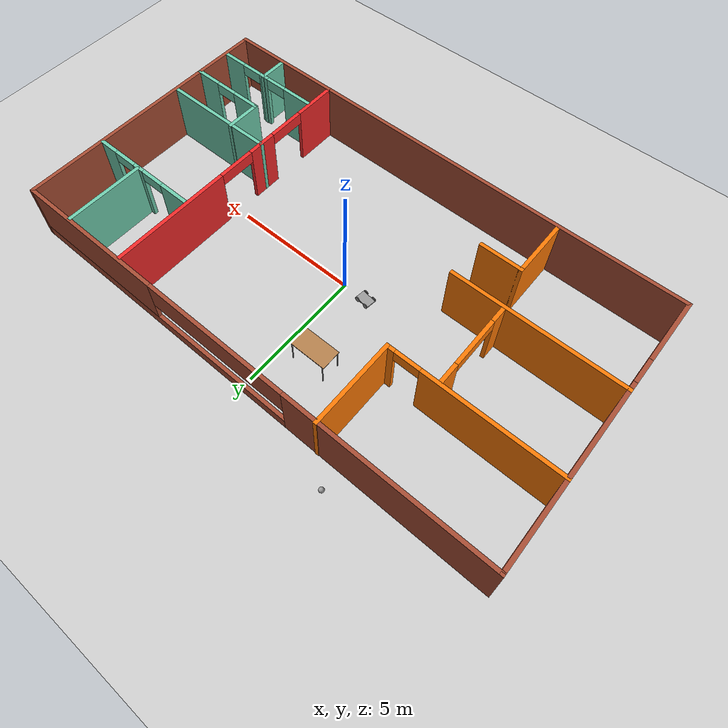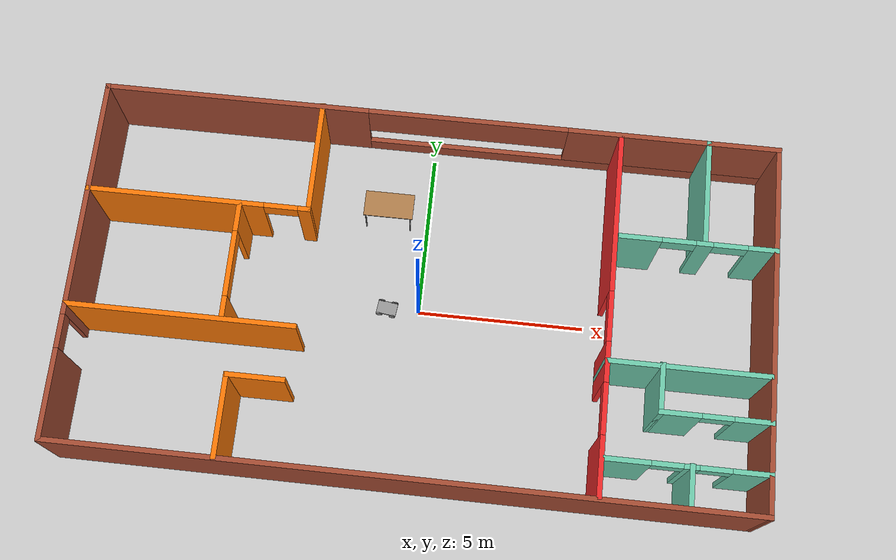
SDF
<sdf version="1.6">
 <world name="default">
  <model name="ground_plane">
   <static>1</static>
   <link name="link">
    <collision name="collision">
     <geometry><plane><normal>0 0 1</normal><size>100 100</size></plane></geometry>
     <surface>
      <contact><collide_bitmask>65535</collide_bitmask></contact>
      <friction><ode><mu>100</mu><mu2>50</mu2></ode></friction>
     </surface>
    </collision>
    <visual name="visual">
     <cast_shadows>0</cast_shadows>
     <geometry><plane><normal>0 0 1</normal><size>100 100</size></plane></geometry>
     <material>
      <script><uri>file://media/materials/scripts/gazebo.material</uri><name>Gazebo/Grey</name></script>
     </material>
    </visual>
   </link>
  </model>
  <model name="building">
   <pose>0.099988 -0.03805 0 0 -0 0</pose>
   <link name="Wall_37">
    <collision name="Wall_37_Collision">
     <geometry><box><size>20.35 0.15 2.5</size></box></geometry>
     <pose>0 0 1.25 0 -0 0</pose>
    </collision>
    <visual name="Wall_37_Visual">
     <pose>0 0 1.25 0 -0 0</pose>
     <geometry><box><size>20.35 0.15 2.5</size></box></geometry>
     <material>
      <script><uri>file://media/materials/scripts/gazebo.material</uri><name>Gazebo/Bricks</name></script>
      <ambient>1 1 1 1</ambient>
     </material>
     <meta><layer>0</layer></meta>
    </visual>
    <pose>1.2e-05 -5.43545 0 0 -0 -0.002228</pose>
   </link>
   <link name="Wall_38">
    <collision name="Wall_38_Collision">
     <geometry><box><size>11.046 0.15 2.5</size></box></geometry>
     <pose>0 0 1.25 0 -0 0</pose>
    </collision>
    <visual name="Wall_38_Visual">
     <pose>0 0 1.25 0 -0 0</pose>
     <geometry><box><size>11.046 0.15 2.5</size></box></geometry>
     <material>
      <script><uri>file://media/materials/scripts/gazebo.material</uri><name>Gazebo/Bricks</name></script>
      <ambient>1 1 1 1</ambient>
     </material>
     <meta><layer>0</layer></meta>
    </visual>
    <pose>10.1 -0.009946 0 0 -0 1.5708</pose>
   </link>
   <link name="Wall_40">
    <pose>-10.1 0.012554 0 0 -0 1.5708</pose>
    <visual name="Wall_40_Visual_0">
     <pose>-4.15449 0 1.25 0 -0 0</pose>
     <geometry><box><size>2.69103 0.15 2.5</size></box></geometry>
     <material>
      <script><uri>file://media/materials/scripts/gazebo.material</uri><name>Gazebo/Bricks</name></script>
      <ambient>1 1 1 1</ambient>
     </material>
     <meta><layer>0</layer></meta>
    </visual>
    <collision name="Wall_40_Collision_0">
     <geometry><box><size>2.69103 0.15 2.5</size></box></geometry>
     <pose>-4.15449 0 1.25 0 -0 0</pose>
    </collision>
    <visual name="Wall_40_Visual_1">
     <pose>1.84551 0 1.25 0 -0 0</pose>
     <geometry><box><size>7.30897 0.15 2.5</size></box></geometry>
     <material>
      <script><uri>file://media/materials/scripts/gazebo.material</uri><name>Gazebo/Bricks</name></script>
      <ambient>1 1 1 1</ambient>
     </material>
     <meta><layer>0</layer></meta>
    </visual>
    <collision name="Wall_40_Collision_1">
     <geometry><box><size>7.30897 0.15 2.5</size></box></geometry>
     <pose>1.84551 0 1.25 0 -0 0</pose>
    </collision>
    <visual name="Wall_40_Visual_2">
     <pose>-2.30897 0 2.25 0 -0 0</pose>
     <geometry><box><size>1 0.15 0.5</size></box></geometry>
     <material>
      <script><uri>file://media/materials/scripts/gazebo.material</uri><name>Gazebo/Bricks</name></script>
      <ambient>1 1 1 1</ambient>
     </material>
     <meta><layer>0</layer></meta>
    </visual>
    <collision name="Wall_40_Collision_2">
     <geometry><box><size>1 0.15 0.5</size></box></geometry>
     <pose>-2.30897 0 2.25 0 -0 0</pose>
    </collision>
   </link>
   <link name="Wall_42">
    <collision name="Wall_42_Collision">
     <geometry><box><size>6.75 0.15 2.5</size></box></geometry>
     <pose>0 0 1.25 0 -0 0</pose>
    </collision>
    <visual name="Wall_42_Visual">
     <pose>0 0 1.25 0 -0 0</pose>
     <geometry><box><size>6.75 0.15 2.5</size></box></geometry>
     <material>
      <script><uri>file://media/materials/scripts/gazebo.material</uri><name>Gazebo/Grey</name></script>
      <ambient>0.996078 0.47451 0.0196078 1</ambient>
     </material>
     <meta><layer>0</layer></meta>
    </visual>
    <pose>-6.79999 -1.45995 0 0 -0 0</pose>
   </link>
   <link name="Wall_44">
    <pose>-6.83449 2.10805 0 0 -0 0</pose>
    <visual name="Wall_44_Visual_0">
     <pose>-0.692963 0 1.25 0 -0 0</pose>
     <geometry><box><size>5.29546 0.15 2.5</size></box></geometry>
     <material>
      <script><uri>file://media/materials/scripts/gazebo.material</uri><name>Gazebo/Grey</name></script>
      <ambient>0.996078 0.47451 0.0196078 1</ambient>
     </material>
     <meta><layer>0</layer></meta>
    </visual>
    <collision name="Wall_44_Collision_0">
     <geometry><box><size>5.29546 0.15 2.5</size></box></geometry>
     <pose>-0.692963 0 1.25 0 -0 0</pose>
    </collision>
    <visual name="Wall_44_Visual_1">
     <pose>3.14773 0 1.25 0 -0 0</pose>
     <geometry><box><size>0.385926 0.15 2.5</size></box></geometry>
     <material>
      <script><uri>file://media/materials/scripts/gazebo.material</uri><name>Gazebo/Grey</name></script>
      <ambient>0.996078 0.47451 0.0196078 1</ambient>
     </material>
     <meta><layer>0</layer></meta>
    </visual>
    <collision name="Wall_44_Collision_1">
     <geometry><box><size>0.385926 0.15 2.5</size></box></geometry>
     <pose>3.14773 0 1.25 0 -0 0</pose>
    </collision>
    <visual name="Wall_44_Visual_2">
     <pose>2.45477 0 2.25 0 -0 0</pose>
     <geometry><box><size>1 0.15 0.5</size></box></geometry>
     <material>
      <script><uri>file://media/materials/scripts/gazebo.material</uri><name>Gazebo/Grey</name></script>
      <ambient>0.996078 0.47451 0.0196078 1</ambient>
     </material>
     <meta><layer>0</layer></meta>
    </visual>
    <collision name="Wall_44_Collision_2">
     <geometry><box><size>1 0.15 0.5</size></box></geometry>
     <pose>2.45477 0 2.25 0 -0 0</pose>
    </collision>
   </link>
   <link name="Wall_45">
    <collision name="Wall_45_Collision">
     <geometry><box><size>3.5 0.15 2.5</size></box></geometry>
     <pose>0 0 1.25 0 -0 0</pose>
    </collision>
    <visual name="Wall_45_Visual">
     <pose>0 0 1.25 0 -0 0</pose>
     <geometry><box><size>3.5 0.15 2.5</size></box></geometry>
     <material>
      <script><uri>file://media/materials/scripts/gazebo.material</uri><name>Gazebo/Grey</name></script>
      <ambient>0.996078 0.47451 0.0196078 1</ambient>
     </material>
     <meta><layer>0</layer></meta>
    </visual>
    <pose>-3.5688 3.7831 0 0 -0 1.57068</pose>
   </link>
   <link name="Wall_47">
    <pose>5.41944 1.9014 0 0 -0 1.5708</pose>
    <visual name="Wall_47_Visual_0">
     <pose>-3.18321 0 1.25 0 -0 0</pose>
     <geometry><box><size>0.633579 0.15 2.5</size></box></geometry>
     <material>
      <script><uri>file://media/materials/scripts/gazebo.material</uri><name>Gazebo/Grey</name></script>
      <ambient>0.937255 0.160784 0.160784 1</ambient>
     </material>
     <meta><layer>0</layer></meta>
    </visual>
    <collision name="Wall_47_Collision_0">
     <geometry><box><size>0.633579 0.15 2.5</size></box></geometry>
     <pose>-3.18321 0 1.25 0 -0 0</pose>
    </collision>
    <visual name="Wall_47_Visual_1">
     <pose>1.06679 0 1.25 0 -0 0</pose>
     <geometry><box><size>4.86642 0.15 2.5</size></box></geometry>
     <material>
      <script><uri>file://media/materials/scripts/gazebo.material</uri><name>Gazebo/Grey</name></script>
      <ambient>0.937255 0.160784 0.160784 1</ambient>
     </material>
     <meta><layer>0</layer></meta>
    </visual>
    <collision name="Wall_47_Collision_1">
     <geometry><box><size>4.86642 0.15 2.5</size></box></geometry>
     <pose>1.06679 0 1.25 0 -0 0</pose>
    </collision>
    <visual name="Wall_47_Visual_2">
     <pose>-2.11642 0 2.25 0 -0 0</pose>
     <geometry><box><size>1.5 0.15 0.5</size></box></geometry>
     <material>
      <script><uri>file://media/materials/scripts/gazebo.material</uri><name>Gazebo/Grey</name></script>
      <ambient>0.937255 0.160784 0.160784 1</ambient>
     </material>
     <meta><layer>0</layer></meta>
    </visual>
    <collision name="Wall_47_Collision_2">
     <geometry><box><size>1.5 0.15 0.5</size></box></geometry>
     <pose>-2.11642 0 2.25 0 -0 0</pose>
    </collision>
   </link>
   <link name="Wall_49">
    <pose>1.2e-05 5.43805 0 0 -0 0</pose>
    <visual name="Wall_49_Visual_0">
     <pose>-6.17418 0 1.25 0 -0 0</pose>
     <geometry><box><size>8.00169 0.15 2.5</size></box></geometry>
     <material>
      <script><uri>file://media/materials/scripts/gazebo.material</uri><name>Gazebo/Bricks</name></script>
      <ambient>1 1 1 1</ambient>
     </material>
     <meta><layer>0</layer></meta>
    </visual>
    <collision name="Wall_49_Collision_0">
     <geometry><box><size>8.00169 0.15 2.5</size></box></geometry>
     <pose>-6.17418 0 1.25 0 -0 0</pose>
    </collision>
    <visual name="Wall_49_Visual_1">
     <pose>4.00084 0 0.25 0 -0 0</pose>
     <geometry><box><size>12.3484 0.15 0.5</size></box></geometry>
     <material>
      <script><uri>file://media/materials/scripts/gazebo.material</uri><name>Gazebo/Bricks</name></script>
      <ambient>1 1 1 1</ambient>
     </material>
     <meta><layer>0</layer></meta>
    </visual>
    <collision name="Wall_49_Collision_1">
     <geometry><box><size>12.3484 0.15 0.5</size></box></geometry>
     <pose>4.00084 0 0.25 0 -0 0</pose>
    </collision>
    <visual name="Wall_49_Visual_2">
     <pose>7.00084 0 1.5 0 -0 0</pose>
     <geometry><box><size>6.34836 0.15 2</size></box></geometry>
     <material>
      <script><uri>file://media/materials/scripts/gazebo.material</uri><name>Gazebo/Bricks</name></script>
      <ambient>1 1 1 1</ambient>
     </material>
     <meta><layer>0</layer></meta>
    </visual>
    <collision name="Wall_49_Collision_2">
     <geometry><box><size>6.34836 0.15 2</size></box></geometry>
     <pose>7.00084 0 1.5 0 -0 0</pose>
    </collision>
    <visual name="Wall_49_Visual_3">
     <pose>0.826666 0 1.9 0 -0 0</pose>
     <geometry><box><size>6 0.15 1.2</size></box></geometry>
     <material>
      <script><uri>file://media/materials/scripts/gazebo.material</uri><name>Gazebo/Bricks</name></script>
      <ambient>1 1 1 1</ambient>
     </material>
     <meta><layer>0</layer></meta>
    </visual>
    <collision name="Wall_49_Collision_3">
     <geometry><box><size>6 0.15 1.2</size></box></geometry>
     <pose>0.826666 0 1.9 0 -0 0</pose>
    </collision>
   </link>
   <link name="Wall_51">
    <pose>7.83851 2.24905 0 0 -0 0</pose>
    <visual name="Wall_51_Visual_0">
     <pose>-1.70105 0 1.25 0 -0 0</pose>
     <geometry><box><size>1.2709 0.15 2.5</size></box></geometry>
     <material>
      <script><uri>file://media/materials/scripts/gazebo.material</uri><name>Gazebo/Grey</name></script>
      <ambient>0.435294 0.796078 0.67451 1</ambient>
     </material>
     <meta><layer>0</layer></meta>
    </visual>
    <collision name="Wall_51_Collision_0">
     <geometry><box><size>1.2709 0.15 2.5</size></box></geometry>
     <pose>-1.70105 0 1.25 0 -0 0</pose>
    </collision>
    <visual name="Wall_51_Visual_1">
     <pose>0.179968 0 1.25 0 -0 0</pose>
     <geometry><box><size>0.491132 0.15 2.5</size></box></geometry>
     <material>
      <script><uri>file://media/materials/scripts/gazebo.material</uri><name>Gazebo/Grey</name></script>
      <ambient>0.435294 0.796078 0.67451 1</ambient>
     </material>
     <meta><layer>0</layer></meta>
    </visual>
    <collision name="Wall_51_Collision_1">
     <geometry><box><size>0.491132 0.15 2.5</size></box></geometry>
     <pose>0.179968 0 1.25 0 -0 0</pose>
    </collision>
    <visual name="Wall_51_Visual_2">
     <pose>1.88102 0 1.25 0 -0 0</pose>
     <geometry><box><size>0.910966 0.15 2.5</size></box></geometry>
     <material>
      <script><uri>file://media/materials/scripts/gazebo.material</uri><name>Gazebo/Grey</name></script>
      <ambient>0.435294 0.796078 0.67451 1</ambient>
     </material>
     <meta><layer>0</layer></meta>
    </visual>
    <collision name="Wall_51_Collision_2">
     <geometry><box><size>0.910966 0.15 2.5</size></box></geometry>
     <pose>1.88102 0 1.25 0 -0 0</pose>
    </collision>
    <visual name="Wall_51_Visual_3">
     <pose>-0.565598 0 2.25 0 -0 0</pose>
     <geometry><box><size>1 0.15 0.5</size></box></geometry>
     <material>
      <script><uri>file://media/materials/scripts/gazebo.material</uri><name>Gazebo/Grey</name></script>
      <ambient>0.435294 0.796078 0.67451 1</ambient>
     </material>
     <meta><layer>0</layer></meta>
    </visual>
    <collision name="Wall_51_Collision_3">
     <geometry><box><size>1 0.15 0.5</size></box></geometry>
     <pose>-0.565598 0 2.25 0 -0 0</pose>
    </collision>
    <visual name="Wall_51_Visual_4">
     <pose>0.925534 0 2.25 0 -0 0</pose>
     <geometry><box><size>1 0.15 0.5</size></box></geometry>
     <material>
      <script><uri>file://media/materials/scripts/gazebo.material</uri><name>Gazebo/Grey</name></script>
      <ambient>0.435294 0.796078 0.67451 1</ambient>
     </material>
     <meta><layer>0</layer></meta>
    </visual>
    <collision name="Wall_51_Collision_4">
     <geometry><box><size>1 0.15 0.5</size></box></geometry>
     <pose>0.925534 0 2.25 0 -0 0</pose>
    </collision>
   </link>
   <link name="Wall_53">
    <collision name="Wall_53_Collision">
     <geometry><box><size>3.28078 0.15 2.5</size></box></geometry>
     <pose>0 0 1.25 0 -0 0</pose>
    </collision>
    <visual name="Wall_53_Visual">
     <pose>0 0 1.25 0 -0 0</pose>
     <geometry><box><size>3.28078 0.15 2.5</size></box></geometry>
     <material>
      <script><uri>file://media/materials/scripts/gazebo.material</uri><name>Gazebo/Grey</name></script>
      <ambient>0.435294 0.796078 0.67451 1</ambient>
     </material>
     <meta><layer>0</layer></meta>
    </visual>
    <pose>8.03001 3.87255 0 0 -0 -1.5708</pose>
   </link>
   <link name="Wall_55">
    <collision name="Wall_55_Collision">
     <geometry><box><size>1.5 0.15 2.5</size></box></geometry>
     <pose>0 0 1.25 0 -0 0</pose>
    </collision>
    <visual name="Wall_55_Visual">
     <pose>0 0 1.25 0 -0 0</pose>
     <geometry><box><size>1.5 0.15 2.5</size></box></geometry>
     <material>
      <script><uri>file://media/materials/scripts/gazebo.material</uri><name>Gazebo/Grey</name></script>
      <ambient>0.435294 0.796078 0.67451 1</ambient>
     </material>
     <meta><layer>0</layer></meta>
    </visual>
    <pose>6.98497 -2.16679 0 0 -0 -1.5708</pose>
   </link>
   <link name="Wall_56">
    <pose>8.53497 -2.84179 0 0 -0 0</pose>
    <visual name="Wall_56_Visual_0">
     <pose>-1.01663 0 1.25 0 -0 0</pose>
     <geometry><box><size>1.21674 0.15 2.5</size></box></geometry>
     <material>
      <script><uri>file://media/materials/scripts/gazebo.material</uri><name>Gazebo/Grey</name></script>
      <ambient>0.435294 0.796078 0.67451 1</ambient>
     </material>
     <meta><layer>0</layer></meta>
    </visual>
    <collision name="Wall_56_Collision_0">
     <geometry><box><size>1.21674 0.15 2.5</size></box></geometry>
     <pose>-1.01663 0 1.25 0 -0 0</pose>
    </collision>
    <visual name="Wall_56_Visual_1">
     <pose>1.05837 0 1.25 0 -0 0</pose>
     <geometry><box><size>1.13326 0.15 2.5</size></box></geometry>
     <material>
      <script><uri>file://media/materials/scripts/gazebo.material</uri><name>Gazebo/Grey</name></script>
      <ambient>0.435294 0.796078 0.67451 1</ambient>
     </material>
     <meta><layer>0</layer></meta>
    </visual>
    <collision name="Wall_56_Collision_1">
     <geometry><box><size>1.13326 0.15 2.5</size></box></geometry>
     <pose>1.05837 0 1.25 0 -0 0</pose>
    </collision>
    <visual name="Wall_56_Visual_2">
     <pose>0.041741 0 2.25 0 -0 0</pose>
     <geometry><box><size>0.9 0.15 0.5</size></box></geometry>
     <material>
      <script><uri>file://media/materials/scripts/gazebo.material</uri><name>Gazebo/Grey</name></script>
      <ambient>0.435294 0.796078 0.67451 1</ambient>
     </material>
     <meta><layer>0</layer></meta>
    </visual>
    <collision name="Wall_56_Collision_2">
     <geometry><box><size>0.9 0.15 0.5</size></box></geometry>
     <pose>0.041741 0 2.25 0 -0 0</pose>
    </collision>
   </link>
   <link name="Wall_58">
    <pose>7.81601 -4.30195 0 0 -0 0</pose>
    <visual name="Wall_58_Visual_0">
     <pose>-1.68725 0 1.25 0 -0 0</pose>
     <geometry><box><size>1.3258 0.15 2.5</size></box></geometry>
     <material>
      <script><uri>file://media/materials/scripts/gazebo.material</uri><name>Gazebo/Grey</name></script>
      <ambient>0.435294 0.796078 0.67451 1</ambient>
     </material>
     <meta><layer>0</layer></meta>
    </visual>
    <collision name="Wall_58_Collision_0">
     <geometry><box><size>1.3258 0.15 2.5</size></box></geometry>
     <pose>-1.68725 0 1.25 0 -0 0</pose>
    </collision>
    <visual name="Wall_58_Visual_1">
     <pose>0.089658 0 1.25 0 -0 0</pose>
     <geometry><box><size>0.428016 0.15 2.5</size></box></geometry>
     <material>
      <script><uri>file://media/materials/scripts/gazebo.material</uri><name>Gazebo/Grey</name></script>
      <ambient>0.435294 0.796078 0.67451 1</ambient>
     </material>
     <meta><layer>0</layer></meta>
    </visual>
    <collision name="Wall_58_Collision_1">
     <geometry><box><size>0.428016 0.15 2.5</size></box></geometry>
     <pose>0.089658 0 1.25 0 -0 0</pose>
    </collision>
    <visual name="Wall_58_Visual_2">
     <pose>1.77691 0 1.25 0 -0 0</pose>
     <geometry><box><size>1.14649 0.15 2.5</size></box></geometry>
     <material>
      <script><uri>file://media/materials/scripts/gazebo.material</uri><name>Gazebo/Grey</name></script>
      <ambient>0.435294 0.796078 0.67451 1</ambient>
     </material>
     <meta><layer>0</layer></meta>
    </visual>
    <collision name="Wall_58_Collision_2">
     <geometry><box><size>1.14649 0.15 2.5</size></box></geometry>
     <pose>1.77691 0 1.25 0 -0 0</pose>
    </collision>
    <visual name="Wall_58_Visual_3">
     <pose>-0.57435 0 2.25 0 -0 0</pose>
     <geometry><box><size>0.9 0.15 0.5</size></box></geometry>
     <material>
      <script><uri>file://media/materials/scripts/gazebo.material</uri><name>Gazebo/Grey</name></script>
      <ambient>0.435294 0.796078 0.67451 1</ambient>
     </material>
     <meta><layer>0</layer></meta>
    </visual>
    <collision name="Wall_58_Collision_3">
     <geometry><box><size>0.9 0.15 0.5</size></box></geometry>
     <pose>-0.57435 0 2.25 0 -0 0</pose>
    </collision>
    <visual name="Wall_58_Visual_4">
     <pose>0.753665 0 2.25 0 -0 0</pose>
     <geometry><box><size>0.9 0.15 0.5</size></box></geometry>
     <material>
      <script><uri>file://media/materials/scripts/gazebo.material</uri><name>Gazebo/Grey</name></script>
      <ambient>0.435294 0.796078 0.67451 1</ambient>
     </material>
     <meta><layer>0</layer></meta>
    </visual>
    <collision name="Wall_58_Collision_4">
     <geometry><box><size>0.9 0.15 0.5</size></box></geometry>
     <pose>0.753665 0 2.25 0 -0 0</pose>
    </collision>
   </link>
   <link name="Wall_62">
    <pose>5.41944 -3.4486 0 0 -0 -1.5708</pose>
    <visual name="Wall_62_Visual_0">
     <pose>-1.64393 0 1.25 0 -0 0</pose>
     <geometry><box><size>0.71215 0.15 2.5</size></box></geometry>
     <material>
      <script><uri>file://media/materials/scripts/gazebo.material</uri><name>Gazebo/Grey</name></script>
      <ambient>0.937255 0.160784 0.160784 1</ambient>
     </material>
     <meta><layer>0</layer></meta>
    </visual>
    <collision name="Wall_62_Collision_0">
     <geometry><box><size>0.71215 0.15 2.5</size></box></geometry>
     <pose>-1.64393 0 1.25 0 -0 0</pose>
    </collision>
    <visual name="Wall_62_Visual_1">
     <pose>1.10607 0 1.25 0 -0 0</pose>
     <geometry><box><size>1.78785 0.15 2.5</size></box></geometry>
     <material>
      <script><uri>file://media/materials/scripts/gazebo.material</uri><name>Gazebo/Grey</name></script>
      <ambient>0.937255 0.160784 0.160784 1</ambient>
     </material>
     <meta><layer>0</layer></meta>
    </visual>
    <collision name="Wall_62_Collision_1">
     <geometry><box><size>1.78785 0.15 2.5</size></box></geometry>
     <pose>1.10607 0 1.25 0 -0 0</pose>
    </collision>
    <visual name="Wall_62_Visual_2">
     <pose>-0.53785 0 2.25 0 -0 0</pose>
     <geometry><box><size>1.5 0.15 0.5</size></box></geometry>
     <material>
      <script><uri>file://media/materials/scripts/gazebo.material</uri><name>Gazebo/Grey</name></script>
      <ambient>0.937255 0.160784 0.160784 1</ambient>
     </material>
     <meta><layer>0</layer></meta>
    </visual>
    <collision name="Wall_62_Collision_2">
     <geometry><box><size>1.5 0.15 0.5</size></box></geometry>
     <pose>-0.53785 0 2.25 0 -0 0</pose>
    </collision>
   </link>
   <link name="Wall_64">
    <collision name="Wall_64_Collision">
     <geometry><box><size>2.5 0.15 2.5</size></box></geometry>
     <pose>0 0 1.25 0 -0 0</pose>
    </collision>
    <visual name="Wall_64_Visual">
     <pose>0 0 1.25 0 -0 0</pose>
     <geometry><box><size>2.5 0.15 2.5</size></box></geometry>
     <material>
      <script><uri>file://media/materials/scripts/gazebo.material</uri><name>Gazebo/Grey</name></script>
      <ambient>0.996078 0.47451 0.0196078 1</ambient>
     </material>
     <meta><layer>0</layer></meta>
    </visual>
    <pose>-5.20386 -4.21882 0 0 -0 1.5708</pose>
   </link>
   <link name="Wall_65">
    <collision name="Wall_65_Collision">
     <geometry><box><size>1.75 0.15 2.5</size></box></geometry>
     <pose>0 0 1.25 0 -0 0</pose>
    </collision>
    <visual name="Wall_65_Visual">
     <pose>0 0 1.25 0 -0 0</pose>
     <geometry><box><size>1.75 0.15 2.5</size></box></geometry>
     <material>
      <script><uri>file://media/materials/scripts/gazebo.material</uri><name>Gazebo/Grey</name></script>
      <ambient>0.996078 0.47451 0.0196078 1</ambient>
     </material>
     <meta><layer>0</layer></meta>
    </visual>
    <pose>-4.40386 -3.04382 0 0 -0 0</pose>
   </link>
   <link name="Wall_67">
    <pose>-5.59388 0.356914 0 0 -0 -1.5708</pose>
    <visual name="Wall_67_Visual_0">
     <pose>-1.30933 0 1.25 0 -0 0</pose>
     <geometry><box><size>0.881338 0.15 2.5</size></box></geometry>
     <material>
      <script><uri>file://media/materials/scripts/gazebo.material</uri><name>Gazebo/Grey</name></script>
      <ambient>0.996078 0.47451 0.0196078 1</ambient>
     </material>
     <meta><layer>0</layer></meta>
    </visual>
    <collision name="Wall_67_Collision_0">
     <geometry><box><size>0.881338 0.15 2.5</size></box></geometry>
     <pose>-1.30933 0 1.25 0 -0 0</pose>
    </collision>
    <visual name="Wall_67_Visual_1">
     <pose>1.44067 0 1.25 0 -0 0</pose>
     <geometry><box><size>0.618662 0.15 2.5</size></box></geometry>
     <material>
      <script><uri>file://media/materials/scripts/gazebo.material</uri><name>Gazebo/Grey</name></script>
      <ambient>0.996078 0.47451 0.0196078 1</ambient>
     </material>
     <meta><layer>0</layer></meta>
    </visual>
    <collision name="Wall_67_Collision_1">
     <geometry><box><size>0.618662 0.15 2.5</size></box></geometry>
     <pose>1.44067 0 1.25 0 -0 0</pose>
    </collision>
    <visual name="Wall_67_Visual_2">
     <pose>0.131338 0 2.25 0 -0 0</pose>
     <geometry><box><size>2 0.15 0.5</size></box></geometry>
     <material>
      <script><uri>file://media/materials/scripts/gazebo.material</uri><name>Gazebo/Grey</name></script>
      <ambient>0.996078 0.47451 0.0196078 1</ambient>
     </material>
     <meta><layer>0</layer></meta>
    </visual>
    <collision name="Wall_67_Collision_2">
     <geometry><box><size>2 0.15 0.5</size></box></geometry>
     <pose>0.131338 0 2.25 0 -0 0</pose>
    </collision>
   </link>
   <link name="Wall_69">
    <collision name="Wall_69_Collision">
     <geometry><box><size>1.25 0.15 2.5</size></box></geometry>
     <pose>0 0 1.25 0 -0 0</pose>
    </collision>
    <visual name="Wall_69_Visual">
     <pose>0 0 1.25 0 -0 0</pose>
     <geometry><box><size>1.25 0.15 2.5</size></box></geometry>
     <material>
      <script><uri>file://media/materials/scripts/gazebo.material</uri><name>Gazebo/Grey</name></script>
      <ambient>0.435294 0.796078 0.67451 1</ambient>
     </material>
     <meta><layer>0</layer></meta>
    </visual>
    <pose>7.92773 -4.82494 0 0 -0 -1.5708</pose>
   </link>
   <link name="Wall_73">
    <collision name="Wall_73_Collision">
     <geometry><box><size>4.75 0.15 2.5</size></box></geometry>
     <pose>0 0 1.25 0 -0 0</pose>
    </collision>
    <visual name="Wall_73_Visual">
     <pose>0 0 1.25 0 -0 0</pose>
     <geometry><box><size>4.75 0.15 2.5</size></box></geometry>
     <material>
      <script><uri>file://media/materials/scripts/gazebo.material</uri><name>Gazebo/Grey</name></script>
      <ambient>0.435294 0.796078 0.67451 1</ambient>
     </material>
     <meta><layer>0</layer></meta>
    </visual>
    <pose>7.71944 -1.5236 0 0 -0 0</pose>
   </link>
   <static>1</static>
  </model>
  <model name="table">
   <static>1</static>
   <link name="link">
    <collision name="surface">
     <pose>0 0 1 0 -0 0</pose>
     <geometry><box><size>1.5 0.8 0.03</size></box></geometry>
     <surface><friction><ode><mu>0.6</mu><mu2>0.6</mu2></ode></friction></surface>
    </collision>
    <visual name="visual1">
     <pose>0 0 1 0 -0 0</pose>
     <geometry><box><size>1.5 0.8 0.03</size></box></geometry>
     <material>
      <script><uri>file://media/materials/scripts/gazebo.material</uri><name>Gazebo/Wood</name></script>
     </material>
    </visual>
    <collision name="front_left_leg">
     <pose>0.68 0.38 0.5 0 -0 0</pose>
     <geometry><cylinder><radius>0.02</radius><length>1</length></cylinder></geometry>
    </collision>
    <visual name="front_left_leg">
     <pose>0.68 0.38 0.5 0 -0 0</pose>
     <geometry><cylinder><radius>0.02</radius><length>1</length></cylinder></geometry>
     <material>
      <script><uri>file://media/materials/scripts/gazebo.material</uri><name>Gazebo/Grey</name></script>
     </material>
    </visual>
    <collision name="front_right_leg">
     <pose>0.68 -0.38 0.5 0 -0 0</pose>
     <geometry><cylinder><radius>0.02</radius><length>1</length></cylinder></geometry>
    </collision>
    <visual name="front_right_leg">
     <pose>0.68 -0.38 0.5 0 -0 0</pose>
     <geometry><cylinder><radius>0.02</radius><length>1</length></cylinder></geometry>
     <material>
      <script><uri>file://media/materials/scripts/gazebo.material</uri><name>Gazebo/Grey</name></script>
     </material>
    </visual>
    <collision name="back_right_leg">
     <pose>-0.68 -0.38 0.5 0 -0 0</pose>
     <geometry><cylinder><radius>0.02</radius><length>1</length></cylinder></geometry>
    </collision>
    <visual name="back_right_leg">
     <pose>-0.68 -0.38 0.5 0 -0 0</pose>
     <geometry><cylinder><radius>0.02</radius><length>1</length></cylinder></geometry>
     <material>
      <script><uri>file://media/materials/scripts/gazebo.material</uri><name>Gazebo/Grey</name></script>
     </material>
    </visual>
    <collision name="back_left_leg">
     <pose>-0.68 0.38 0.5 0 -0 0</pose>
     <geometry><cylinder><radius>0.02</radius><length>1</length></cylinder></geometry>
    </collision>
    <visual name="back_left_leg">
     <pose>-0.68 0.38 0.5 0 -0 0</pose>
     <geometry><cylinder><radius>0.02</radius><length>1</length></cylinder></geometry>
     <material>
      <script><uri>file://media/materials/scripts/gazebo.material</uri><name>Gazebo/Grey</name></script>
     </material>
    </visual>
   </link>
   <pose>-1.22708 3.03842 0 0 -0 0</pose>
  </model>
  <model name="myRobot_clone_0">
   <link name="link_0">
    <inertial>
     <mass>1</mass>
     <inertia>
      <ixx>0.166667</ixx>
      <ixy>0</ixy>
      <ixz>0</ixz>
      <iyy>0.166667</iyy>
      <iyz>0</iyz>
      <izz>0.166667</izz>
     </inertia>
     <pose>0 0 0.1 0 -0 0</pose>
    </inertial>
    <pose>0 0.009302 0 0 -0 0</pose>
    <visual name="visual">
     <geometry><box><size>0.6 0.4 0.05</size></box></geometry>
     <material>
      <lighting>1</lighting>
      <script><uri>file://media/materials/scripts/gazebo.material</uri><name>Gazebo/Grey</name></script>
      <shader type="vertex"><normal_map>__default__</normal_map></shader>
      <ambient>0.3 0.3 0.3 1</ambient>
      <diffuse>0.7 0.7 0.7 1</diffuse>
      <specular>0.01 0.01 0.01 1</specular>
      <emissive>0 0 0 1</emissive>
     </material>
    </visual>
    <collision name="collision">
     <geometry><box><size>0.6 0.4 0.05</size></box></geometry>
     <surface>
      <friction>
       <ode><mu>1</mu><mu2>1</mu2><fdir1>0 0 0</fdir1><slip1>0</slip1><slip2>0</slip2></ode>
       <torsional>
        <coefficient>1</coefficient>
        <patch_radius>0</patch_radius>
        <surface_radius>0</surface_radius>
        <use_patch_radius>1</use_patch_radius>
        <ode><slip>0</slip></ode>
       </torsional>
      </friction>
      <bounce><restitution_coefficient>0</restitution_coefficient><threshold>1e+06</threshold></bounce>
      <contact>
       <collide_without_contact>0</collide_without_contact>
       <collide_without_contact_bitmask>1</collide_without_contact_bitmask>
       <collide_bitmask>1</collide_bitmask>
       <ode>
        <soft_cfm>0</soft_cfm>
        <soft_erp>0.2</soft_erp>
        <kp>1e+13</kp>
        <kd>1</kd>
        <max_vel>0.01</max_vel>
        <min_depth>0</min_depth>
       </ode>
       <bullet>
        <split_impulse>1</split_impulse>
        <split_impulse_penetration_threshold>-0.01</split_impulse_penetration_threshold>
        <soft_cfm>0</soft_cfm>
        <soft_erp>0.2</soft_erp>
        <kp>1e+13</kp>
        <kd>1</kd>
       </bullet>
      </contact>
     </surface>
    </collision>
   </link>
   <link name="link_1">
    <inertial>
     <mass>1</mass>
     <inertia><ixx>0.145833</ixx><ixy>0</ixy><ixz>0</ixz><iyy>0.145833</iyy><iyz>0</iyz><izz>0.125</izz></inertia>
    </inertial>
    <pose>-0.2 0.212674 0 1.5707 -0 0</pose>
    <visual name="visual">
     <geometry><cylinder><radius>0.1</radius><length>0.03</length></cylinder></geometry>
     <material>
      <lighting>1</lighting>
      <script><uri>file://media/materials/scripts/gazebo.material</uri><name>Gazebo/Grey</name></script>
      <shader type="vertex"><normal_map>__default__</normal_map></shader>
      <ambient>0.3 0.3 0.3 1</ambient>
      <diffuse>0.7 0.7 0.7 1</diffuse>
      <specular>0.01 0.01 0.01 1</specular>
      <emissive>0 0 0 1</emissive>
     </material>
    </visual>
    <collision name="collision">
     <geometry><cylinder><radius>0.1</radius><length>0.03</length></cylinder></geometry>
     <surface>
      <friction>
       <ode><mu>1</mu><mu2>1</mu2><fdir1>0 0 0</fdir1><slip1>0</slip1><slip2>0</slip2></ode>
       <torsional>
        <coefficient>1</coefficient>
        <patch_radius>0</patch_radius>
        <surface_radius>0</surface_radius>
        <use_patch_radius>1</use_patch_radius>
        <ode><slip>0</slip></ode>
       </torsional>
      </friction>
      <bounce><restitution_coefficient>0</restitution_coefficient><threshold>1e+06</threshold></bounce>
      <contact>
       <collide_without_contact>0</collide_without_contact>
       <collide_without_contact_bitmask>1</collide_without_contact_bitmask>
       <collide_bitmask>1</collide_bitmask>
       <ode>
        <soft_cfm>0</soft_cfm>
        <soft_erp>0.2</soft_erp>
        <kp>1e+13</kp>
        <kd>1</kd>
        <max_vel>0.01</max_vel>
        <min_depth>0</min_depth>
       </ode>
       <bullet>
        <split_impulse>1</split_impulse>
        <split_impulse_penetration_threshold>-0.01</split_impulse_penetration_threshold>
        <soft_cfm>0</soft_cfm>
        <soft_erp>0.2</soft_erp>
        <kp>1e+13</kp>
        <kd>1</kd>
       </bullet>
      </contact>
     </surface>
    </collision>
   </link>
   <link name="link_1_clone">
    <inertial>
     <mass>1</mass>
     <inertia><ixx>0.145833</ixx><ixy>0</ixy><ixz>0</ixz><iyy>0.145833</iyy><iyz>0</iyz><izz>0.125</izz></inertia>
    </inertial>
    <pose>-0.2 -0.217336 0 1.5707 -0 0</pose>
    <visual name="visual">
     <geometry><cylinder><radius>0.1</radius><length>0.03</length></cylinder></geometry>
     <material>
      <lighting>1</lighting>
      <script><uri>file://media/materials/scripts/gazebo.material</uri><name>Gazebo/Grey</name></script>
      <shader type="vertex"><normal_map>__default__</normal_map></shader>
      <ambient>0.3 0.3 0.3 1</ambient>
      <diffuse>0.7 0.7 0.7 1</diffuse>
      <specular>0.01 0.01 0.01 1</specular>
      <emissive>0 0 0 1</emissive>
     </material>
    </visual>
    <collision name="collision">
     <geometry><cylinder><radius>0.1</radius><length>0.03</length></cylinder></geometry>
     <surface>
      <friction>
       <ode><mu>1</mu><mu2>1</mu2><fdir1>0 0 0</fdir1><slip1>0</slip1><slip2>0</slip2></ode>
       <torsional>
        <coefficient>1</coefficient>
        <patch_radius>0</patch_radius>
        <surface_radius>0</surface_radius>
        <use_patch_radius>1</use_patch_radius>
        <ode><slip>0</slip></ode>
       </torsional>
      </friction>
      <bounce><restitution_coefficient>0</restitution_coefficient><threshold>1e+06</threshold></bounce>
      <contact>
       <collide_without_contact>0</collide_without_contact>
       <collide_without_contact_bitmask>1</collide_without_contact_bitmask>
       <collide_bitmask>1</collide_bitmask>
       <ode>
        <soft_cfm>0</soft_cfm>
        <soft_erp>0.2</soft_erp>
        <kp>1e+13</kp>
        <kd>1</kd>
        <max_vel>0.01</max_vel>
        <min_depth>0</min_depth>
       </ode>
       <bullet>
        <split_impulse>1</split_impulse>
        <split_impulse_penetration_threshold>-0.01</split_impulse_penetration_threshold>
        <soft_cfm>0</soft_cfm>
        <soft_erp>0.2</soft_erp>
        <kp>1e+13</kp>
        <kd>1</kd>
       </bullet>
      </contact>
     </surface>
    </collision>
   </link>
   <link name="link_1_clone_0">
    <inertial>
     <mass>1</mass>
     <inertia><ixx>0.145833</ixx><ixy>0</ixy><ixz>0</ixz><iyy>0.145833</iyy><iyz>0</iyz><izz>0.125</izz></inertia>
    </inertial>
    <pose>0.2 -0.217326 0 1.5707 -0 0</pose>
    <visual name="visual">
     <geometry><cylinder><radius>0.1</radius><length>0.03</length></cylinder></geometry>
     <material>
      <lighting>1</lighting>
      <script><uri>file://media/materials/scripts/gazebo.material</uri><name>Gazebo/Grey</name></script>
      <shader type="vertex"><normal_map>__default__</normal_map></shader>
      <ambient>0.3 0.3 0.3 1</ambient>
      <diffuse>0.7 0.7 0.7 1</diffuse>
      <specular>0.01 0.01 0.01 1</specular>
      <emissive>0 0 0 1</emissive>
     </material>
    </visual>
    <collision name="collision">
     <geometry><cylinder><radius>0.1</radius><length>0.03</length></cylinder></geometry>
     <surface>
      <friction>
       <ode><mu>1</mu><mu2>1</mu2><fdir1>0 0 0</fdir1><slip1>0</slip1><slip2>0</slip2></ode>
       <torsional>
        <coefficient>1</coefficient>
        <patch_radius>0</patch_radius>
        <surface_radius>0</surface_radius>
        <use_patch_radius>1</use_patch_radius>
        <ode><slip>0</slip></ode>
       </torsional>
      </friction>
      <bounce><restitution_coefficient>0</restitution_coefficient><threshold>1e+06</threshold></bounce>
      <contact>
       <collide_without_contact>0</collide_without_contact>
       <collide_without_contact_bitmask>1</collide_without_contact_bitmask>
       <collide_bitmask>1</collide_bitmask>
       <ode>
        <soft_cfm>0</soft_cfm>
        <soft_erp>0.2</soft_erp>
        <kp>1e+13</kp>
        <kd>1</kd>
        <max_vel>0.01</max_vel>
        <min_depth>0</min_depth>
       </ode>
       <bullet>
        <split_impulse>1</split_impulse>
        <split_impulse_penetration_threshold>-0.01</split_impulse_penetration_threshold>
        <soft_cfm>0</soft_cfm>
        <soft_erp>0.2</soft_erp>
        <kp>1e+13</kp>
        <kd>1</kd>
       </bullet>
      </contact>
     </surface>
    </collision>
   </link>
   <link name="link_1_clone_1">
    <inertial>
     <mass>1</mass>
     <inertia><ixx>0.145833</ixx><ixy>0</ixy><ixz>0</ixz><iyy>0.145833</iyy><iyz>0</iyz><izz>0.125</izz></inertia>
    </inertial>
    <pose>0.2 0.212684 0 1.5707 -0 0</pose>
    <visual name="visual">
     <geometry><cylinder><radius>0.1</radius><length>0.03</length></cylinder></geometry>
     <material>
      <lighting>1</lighting>
      <script><uri>file://media/materials/scripts/gazebo.material</uri><name>Gazebo/Grey</name></script>
      <shader type="vertex"><normal_map>__default__</normal_map></shader>
      <ambient>0.3 0.3 0.3 1</ambient>
      <diffuse>0.7 0.7 0.7 1</diffuse>
      <specular>0.01 0.01 0.01 1</specular>
      <emissive>0 0 0 1</emissive>
     </material>
    </visual>
    <collision name="collision">
     <geometry><cylinder><radius>0.1</radius><length>0.03</length></cylinder></geometry>
     <surface>
      <friction>
       <ode><mu>1</mu><mu2>1</mu2><fdir1>0 0 0</fdir1><slip1>0</slip1><slip2>0</slip2></ode>
       <torsional>
        <coefficient>1</coefficient>
        <patch_radius>0</patch_radius>
        <surface_radius>0</surface_radius>
        <use_patch_radius>1</use_patch_radius>
        <ode><slip>0</slip></ode>
       </torsional>
      </friction>
      <bounce><restitution_coefficient>0</restitution_coefficient><threshold>1e+06</threshold></bounce>
      <contact>
       <collide_without_contact>0</collide_without_contact>
       <collide_without_contact_bitmask>1</collide_without_contact_bitmask>
       <collide_bitmask>1</collide_bitmask>
       <ode>
        <soft_cfm>0</soft_cfm>
        <soft_erp>0.2</soft_erp>
        <kp>1e+13</kp>
        <kd>1</kd>
        <max_vel>0.01</max_vel>
        <min_depth>0</min_depth>
       </ode>
       <bullet>
        <split_impulse>1</split_impulse>
        <split_impulse_penetration_threshold>-0.01</split_impulse_penetration_threshold>
        <soft_cfm>0</soft_cfm>
        <soft_erp>0.2</soft_erp>
        <kp>1e+13</kp>
        <kd>1</kd>
       </bullet>
      </contact>
     </surface>
    </collision>
   </link>
   <joint name="link_0_JOINT_0" type="revolute">
    <parent>link_0</parent>
    <child>link_1_clone_0</child>
    <axis>
     <xyz>1 0 0</xyz>
     <use_parent_model_frame>0</use_parent_model_frame>
     <limit>
      <lower>-1.79769e+308</lower>
      <upper>1.79769e+308</upper>
      <effort>-1</effort>
      <velocity>-1</velocity>
     </limit>
     <dynamics>
      <spring_reference>0</spring_reference>
      <spring_stiffness>0</spring_stiffness>
      <damping>0</damping>
     </dynamics>
    </axis>
    <physics>
     <ode><limit><cfm>0</cfm><erp>0.2</erp></limit><suspension><cfm>0</cfm><erp>0.2</erp></suspension></ode>
    </physics>
   </joint>
   <joint name="link_0_JOINT_1" type="revolute">
    <parent>link_0</parent>
    <child>link_1_clone_1</child>
    <axis>
     <xyz>0 0 1</xyz>
     <use_parent_model_frame>0</use_parent_model_frame>
     <limit>
      <lower>-1.79769e+308</lower>
      <upper>1.79769e+308</upper>
      <effort>-1</effort>
      <velocity>-1</velocity>
     </limit>
     <dynamics>
      <spring_reference>0</spring_reference>
      <spring_stiffness>0</spring_stiffness>
      <damping>0</damping>
     </dynamics>
    </axis>
    <physics>
     <ode><limit><cfm>0</cfm><erp>0.2</erp></limit><suspension><cfm>0</cfm><erp>0.2</erp></suspension></ode>
    </physics>
   </joint>
   <joint name="link_0_JOINT_2" type="revolute">
    <parent>link_0</parent>
    <child>link_1_clone</child>
    <axis>
     <xyz>1 0 0</xyz>
     <use_parent_model_frame>0</use_parent_model_frame>
     <limit>
      <lower>-1.79769e+308</lower>
      <upper>1.79769e+308</upper>
      <effort>-1</effort>
      <velocity>-1</velocity>
     </limit>
     <dynamics>
      <spring_reference>0</spring_reference>
      <spring_stiffness>0</spring_stiffness>
      <damping>0</damping>
     </dynamics>
    </axis>
    <physics>
     <ode><limit><cfm>0</cfm><erp>0.2</erp></limit><suspension><cfm>0</cfm><erp>0.2</erp></suspension></ode>
    </physics>
   </joint>
   <joint name="link_0_JOINT_3" type="revolute">
    <parent>link_0</parent>
    <child>link_1</child>
    <axis>
     <xyz>1 0 0</xyz>
     <use_parent_model_frame>0</use_parent_model_frame>
     <limit>
      <lower>-1.79769e+308</lower>
      <upper>1.79769e+308</upper>
      <effort>-1</effort>
      <velocity>-1</velocity>
     </limit>
     <dynamics>
      <spring_reference>0</spring_reference>
      <spring_stiffness>0</spring_stiffness>
      <damping>0</damping>
     </dynamics>
    </axis>
    <physics>
     <ode><limit><cfm>0</cfm><erp>0.2</erp></limit><suspension><cfm>0</cfm><erp>0.2</erp></suspension></ode>
    </physics>
   </joint>
   <static>0</static>
   <pose>-0.974574 0.018542 0.1 1e-06 -8e-06 -0.119716</pose>
  </model>
  <model name="my_ball">
   <pose>-4.35484 6.27553 0.1 0 -0 0</pose>
   <link name="link_0">
    <inertial>
     <mass>1</mass>
     <inertia><ixx>0.1</ixx><ixy>0</ixy><ixz>0</ixz><iyy>0.1</iyy><iyz>0</iyz><izz>0.1</izz></inertia>
    </inertial>
    <visual name="visual">
     <geometry><sphere><radius>0.1</radius></sphere></geometry>
     <material>
      <lighting>1</lighting>
      <script><uri>file://media/materials/scripts/gazebo.material</uri><name>Gazebo/Grey</name></script>
      <shader type="pixel"><normal_map>__default__</normal_map></shader>
      <ambient>1 1 1 1</ambient>
      <diffuse>1 1 1 1</diffuse>
      <specular>1 1 1 1</specular>
      <emissive>1 1 1 1</emissive>
     </material>
    </visual>
    <collision name="collision">
     <geometry><sphere><radius>0.1</radius></sphere></geometry>
     <surface>
      <friction>
       <ode><mu>1</mu><mu2>1</mu2><fdir1>0 0 0</fdir1><slip1>0</slip1><slip2>0</slip2></ode>
       <torsional>
        <coefficient>1</coefficient>
        <patch_radius>0</patch_radius>
        <surface_radius>0</surface_radius>
        <use_patch_radius>1</use_patch_radius>
        <ode><slip>0</slip></ode>
       </torsional>
      </friction>
      <bounce><restitution_coefficient>0</restitution_coefficient><threshold>1e+06</threshold></bounce>
      <contact>
       <collide_without_contact>0</collide_without_contact>
       <collide_without_contact_bitmask>1</collide_without_contact_bitmask>
       <collide_bitmask>1</collide_bitmask>
       <ode>
        <soft_cfm>0</soft_cfm>
        <soft_erp>0.2</soft_erp>
        <kp>1e+13</kp>
        <kd>1</kd>
        <max_vel>0.01</max_vel>
        <min_depth>0</min_depth>
       </ode>
       <bullet>
        <split_impulse>1</split_impulse>
        <split_impulse_penetration_threshold>-0.01</split_impulse_penetration_threshold>
        <soft_cfm>0</soft_cfm>
        <soft_erp>0.2</soft_erp>
        <kp>1e+13</kp>
        <kd>1</kd>
       </bullet>
      </contact>
     </surface>
    </collision>
   </link>
   <static>0</static>
  </model>
 </world>
</sdf>
